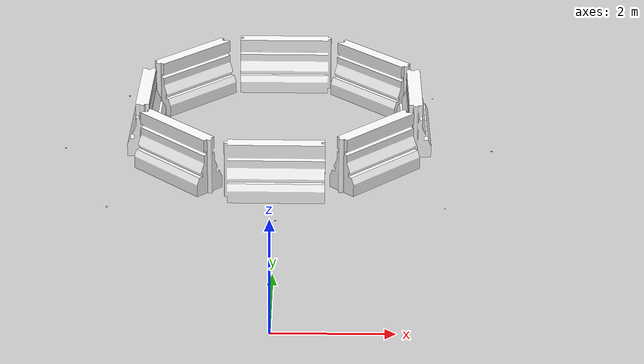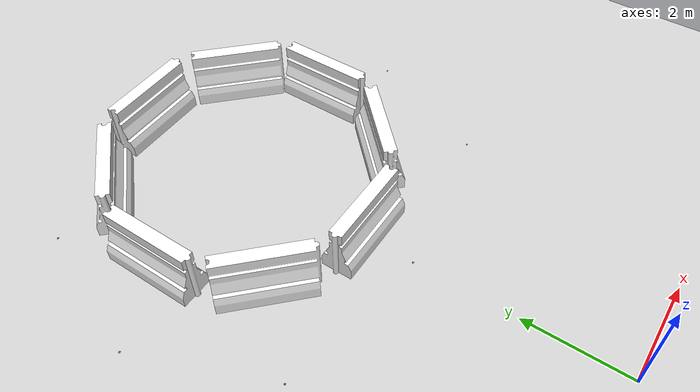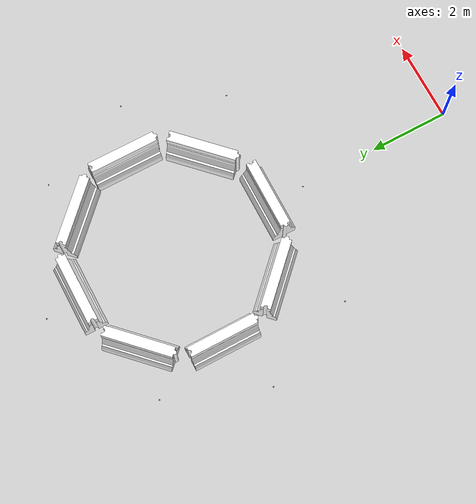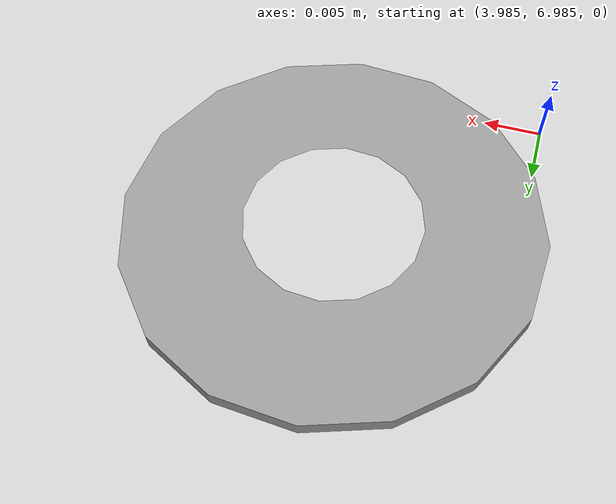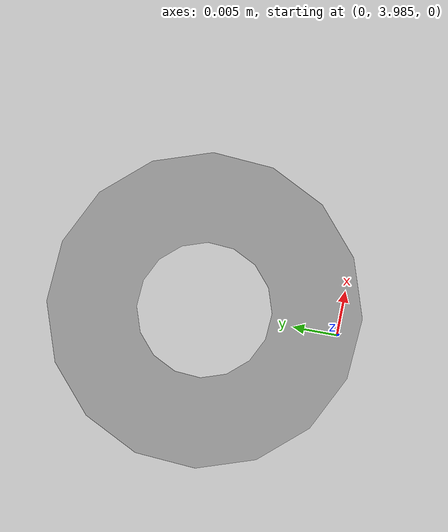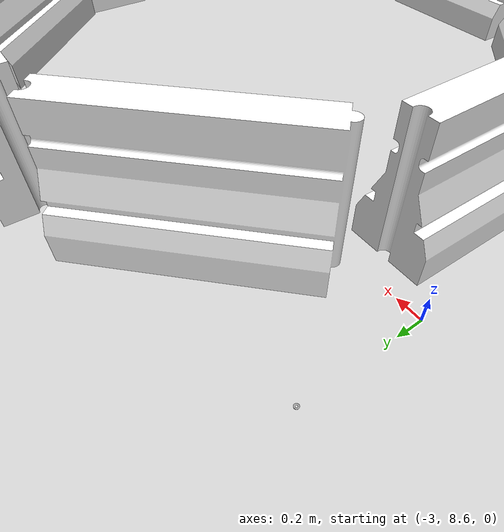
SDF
<sdf version="1.6">
 <world name="default">
  <light name="sun" type="directional">
   <pose>0 0 10 0 -0 0</pose>
   <diffuse>0.8 0.8 0.8 1</diffuse>
   <specular>0.2 0.2 0.2 1</specular>
   <attenuation>
    <range>1000</range>
    <constant>0.9</constant>
    <linear>0.01</linear>
    <quadratic>0.001</quadratic>
   </attenuation>
   <direction>-0.5 0.1 -0.9</direction>
  </light>
  <model name="ground_plane">
   <static>1</static>
   <link name="link">
    <collision name="collision">
     <geometry><plane><normal>0 0 1</normal><size>100 100</size></plane></geometry>
     <surface><friction><ode><mu>100</mu><mu2>50</mu2></ode></friction></surface>
    </collision>
    <visual name="visual">
     <cast_shadows>0</cast_shadows>
     <geometry><plane><normal>0 0 1</normal><size>100 100</size></plane></geometry>
     <material>
      <script><uri>file://media/materials/scripts/gazebo.material</uri><name>Gazebo/Grey</name></script>
     </material>
    </visual>
   </link>
  </model>
  <gravity>0 0 -9.8</gravity>
  <magnetic_field>6e-06 2.3e-05 -4.2e-05</magnetic_field>
  <atmosphere type="adiabatic"/>
  <physics name="default_physics" default="0" type="ode">
   <max_step_size>0.001</max_step_size>
   <real_time_factor>1</real_time_factor>
   <real_time_update_rate>1000</real_time_update_rate>
  </physics>
  <scene><ambient>0.4 0.4 0.4 1</ambient><background>0.7 0.7 0.7 1</background><shadows>1</shadows></scene>
  <spherical_coordinates>
   <surface_model>EARTH_WGS84</surface_model>
   <latitude_deg>0</latitude_deg>
   <longitude_deg>0</longitude_deg>
   <elevation>0</elevation>
   <heading_deg>0</heading_deg>
  </spherical_coordinates>
  <model name="drc_practice_white_jersey_barrier">
   <static>1</static>
   <link name="link">
    <visual name="visual">
     <geometry>
      <mesh>
       <uri>model://drc_practice_white_jersey_barrier/meshes/jersey_barrier.dae</uri>
       <scale>1 1 1</scale>
      </mesh>
     </geometry>
    </visual>
    <collision name="collision">
     <geometry>
      <mesh>
       <uri>model://drc_practice_white_jersey_barrier/meshes/jersey_barrier.dae</uri>
       <scale>1 1 1</scale>
      </mesh>
     </geometry>
    </collision>
   </link>
   <pose>1.78771 5.82373 0 0 0 -0.785398</pose>
  </model>
  <model name="drc_practice_white_jersey_barrier_clone">
   <static>1</static>
   <link name="link">
    <visual name="visual">
     <geometry>
      <mesh>
       <uri>model://drc_practice_white_jersey_barrier/meshes/jersey_barrier.dae</uri>
       <scale>1 1 1</scale>
      </mesh>
     </geometry>
    </visual>
    <collision name="collision">
     <geometry>
      <mesh>
       <uri>model://drc_practice_white_jersey_barrier/meshes/jersey_barrier.dae</uri>
       <scale>1 1 1</scale>
      </mesh>
     </geometry>
    </collision>
   </link>
   <pose>0 5 0 0 0 -1.5708</pose>
  </model>
  <model name="drc_practice_white_jersey_barrier_clone_0">
   <static>1</static>
   <link name="link">
    <visual name="visual">
     <geometry>
      <mesh>
       <uri>model://drc_practice_white_jersey_barrier/meshes/jersey_barrier.dae</uri>
       <scale>1 1 1</scale>
      </mesh>
     </geometry>
    </visual>
    <collision name="collision">
     <geometry>
      <mesh>
       <uri>model://drc_practice_white_jersey_barrier/meshes/jersey_barrier.dae</uri>
       <scale>1 1 1</scale>
      </mesh>
     </geometry>
    </collision>
   </link>
   <pose>0.060698 10.0444 0 0 -0 1.5708</pose>
  </model>
  <model name="drc_practice_white_jersey_barrier_clone_1">
   <static>1</static>
   <link name="link">
    <visual name="visual">
     <geometry>
      <mesh>
       <uri>model://drc_practice_white_jersey_barrier/meshes/jersey_barrier.dae</uri>
       <scale>1 1 1</scale>
      </mesh>
     </geometry>
    </visual>
    <collision name="collision">
     <geometry>
      <mesh>
       <uri>model://drc_practice_white_jersey_barrier/meshes/jersey_barrier.dae</uri>
       <scale>1 1 1</scale>
      </mesh>
     </geometry>
    </collision>
   </link>
   <pose>-1.72296 9.34128 0 0 0 -0.785398</pose>
  </model>
  <model name="drc_practice_white_jersey_barrier_clone_2">
   <static>1</static>
   <link name="link">
    <visual name="visual">
     <geometry>
      <mesh>
       <uri>model://drc_practice_white_jersey_barrier/meshes/jersey_barrier.dae</uri>
       <scale>1 1 1</scale>
      </mesh>
     </geometry>
    </visual>
    <collision name="collision">
     <geometry>
      <mesh>
       <uri>model://drc_practice_white_jersey_barrier/meshes/jersey_barrier.dae</uri>
       <scale>1 1 1</scale>
      </mesh>
     </geometry>
    </collision>
   </link>
   <pose>1.81226 9.27858 0 0 -0 0.785398</pose>
  </model>
  <model name="drc_practice_white_jersey_barrier_clone_3">
   <static>1</static>
   <link name="link">
    <visual name="visual">
     <geometry>
      <mesh>
       <uri>model://drc_practice_white_jersey_barrier/meshes/jersey_barrier.dae</uri>
       <scale>1 1 1</scale>
      </mesh>
     </geometry>
    </visual>
    <collision name="collision">
     <geometry>
      <mesh>
       <uri>model://drc_practice_white_jersey_barrier/meshes/jersey_barrier.dae</uri>
       <scale>1 1 1</scale>
      </mesh>
     </geometry>
    </collision>
   </link>
   <pose>-1.81323 5.76636 0 0 -0 0.785398</pose>
  </model>
  <model name="drc_practice_white_jersey_barrier_clone_2_clone">
   <static>1</static>
   <link name="link">
    <visual name="visual">
     <geometry>
      <mesh>
       <uri>model://drc_practice_white_jersey_barrier/meshes/jersey_barrier.dae</uri>
       <scale>1 1 1</scale>
      </mesh>
     </geometry>
    </visual>
    <collision name="collision">
     <geometry>
      <mesh>
       <uri>model://drc_practice_white_jersey_barrier/meshes/jersey_barrier.dae</uri>
       <scale>1 1 1</scale>
      </mesh>
     </geometry>
    </collision>
   </link>
   <pose>2.55055 7.59091 0 0 -0 0</pose>
  </model>
  <model name="drc_practice_white_jersey_barrier_clone_2_clone_0">
   <static>1</static>
   <link name="link">
    <visual name="visual">
     <geometry>
      <mesh>
       <uri>model://drc_practice_white_jersey_barrier/meshes/jersey_barrier.dae</uri>
       <scale>1 1 1</scale>
      </mesh>
     </geometry>
    </visual>
    <collision name="collision">
     <geometry>
      <mesh>
       <uri>model://drc_practice_white_jersey_barrier/meshes/jersey_barrier.dae</uri>
       <scale>1 1 1</scale>
      </mesh>
     </geometry>
    </collision>
   </link>
   <pose>-2.50821 7.55772 0 0 -0 0</pose>
  </model>
  <model name="washer_22">
   <link name="link">
    <pose>0 0 0.001 0 -0 0</pose>
    <inertial>
     <mass>0.0122</mass>
     <inertia>
      <ixx>1.08758e-06</ixx>
      <ixy>0</ixy>
      <ixz>0</ixz>
      <iyy>1.08758e-06</iyy>
      <iyz>0</iyz>
      <izz>2.16703e-06</izz>
     </inertia>
    </inertial>
    <collision name="collision">
     <geometry><mesh><uri>model://washer/meshes/washer.dae</uri><scale>1 1 1</scale></mesh></geometry>
     <surface>
      <contact>
       <poissons_ratio>0.305</poissons_ratio>
       <elastic_modulus>2e+11</elastic_modulus>
       <ode><kp>100000</kp><kd>100</kd><max_vel>100</max_vel><min_depth>0.001</min_depth></ode>
      </contact>
      <friction>
       <torsional>
        <coefficient>1</coefficient>
        <use_patch_radius>0</use_patch_radius>
        <surface_radius>0.01</surface_radius>
       </torsional>
      </friction>
     </surface>
    </collision>
    <visual name="visual">
     <geometry><mesh><uri>model://washer/meshes/washer.dae</uri><scale>1 1 1</scale></mesh></geometry>
     <material>
      <script><uri>file://media/materials/scripts/gazebo.material</uri><name>Gazebo/Grey</name></script>
     </material>
    </visual>
   </link>
   <pose>0 2 -0.000561 -0.016306 -0.005486 6.3e-05</pose>
  </model>
  <model name="washer_23">
   <link name="link">
    <pose>0 0 0.001 0 -0 0</pose>
    <inertial>
     <mass>0.0122</mass>
     <inertia>
      <ixx>1.08758e-06</ixx>
      <ixy>0</ixy>
      <ixz>0</ixz>
      <iyy>1.08758e-06</iyy>
      <iyz>0</iyz>
      <izz>2.16703e-06</izz>
     </inertia>
    </inertial>
    <collision name="collision">
     <geometry><mesh><uri>model://washer/meshes/washer.dae</uri><scale>1 1 1</scale></mesh></geometry>
     <surface>
      <contact>
       <poissons_ratio>0.305</poissons_ratio>
       <elastic_modulus>2e+11</elastic_modulus>
       <ode><kp>100000</kp><kd>100</kd><max_vel>100</max_vel><min_depth>0.001</min_depth></ode>
      </contact>
      <friction>
       <torsional>
        <coefficient>1</coefficient>
        <use_patch_radius>0</use_patch_radius>
        <surface_radius>0.01</surface_radius>
       </torsional>
      </friction>
     </surface>
    </collision>
    <visual name="visual">
     <geometry><mesh><uri>model://washer/meshes/washer.dae</uri><scale>1 1 1</scale></mesh></geometry>
     <material>
      <script><uri>file://media/materials/scripts/gazebo.material</uri><name>Gazebo/Grey</name></script>
     </material>
    </visual>
   </link>
   <pose>0 4 -0.000499 -0.014491 -0.004873 5e-05</pose>
  </model>
  <model name="washer_24">
   <link name="link">
    <pose>0 0 0.001 0 -0 0</pose>
    <inertial>
     <mass>0.0122</mass>
     <inertia>
      <ixx>1.08758e-06</ixx>
      <ixy>0</ixy>
      <ixz>0</ixz>
      <iyy>1.08758e-06</iyy>
      <iyz>0</iyz>
      <izz>2.16703e-06</izz>
     </inertia>
    </inertial>
    <collision name="collision">
     <geometry><mesh><uri>model://washer/meshes/washer.dae</uri><scale>1 1 1</scale></mesh></geometry>
     <surface>
      <contact>
       <poissons_ratio>0.305</poissons_ratio>
       <elastic_modulus>2e+11</elastic_modulus>
       <ode><kp>100000</kp><kd>100</kd><max_vel>100</max_vel><min_depth>0.001</min_depth></ode>
      </contact>
      <friction>
       <torsional>
        <coefficient>1</coefficient>
        <use_patch_radius>0</use_patch_radius>
        <surface_radius>0.01</surface_radius>
       </torsional>
      </friction>
     </surface>
    </collision>
    <visual name="visual">
     <geometry><mesh><uri>model://washer/meshes/washer.dae</uri><scale>1 1 1</scale></mesh></geometry>
     <material>
      <script><uri>file://media/materials/scripts/gazebo.material</uri><name>Gazebo/Grey</name></script>
     </material>
    </visual>
   </link>
   <pose>3 4.53424 -0.000436 -0.012677 -0.004264 3.8e-05</pose>
  </model>
  <model name="washer_25">
   <link name="link">
    <pose>0 0 0.001 0 -0 0</pose>
    <inertial>
     <mass>0.0122</mass>
     <inertia>
      <ixx>1.08758e-06</ixx>
      <ixy>0</ixy>
      <ixz>0</ixz>
      <iyy>1.08758e-06</iyy>
      <iyz>0</iyz>
      <izz>2.16703e-06</izz>
     </inertia>
    </inertial>
    <collision name="collision">
     <geometry><mesh><uri>model://washer/meshes/washer.dae</uri><scale>1 1 1</scale></mesh></geometry>
     <surface>
      <contact>
       <poissons_ratio>0.305</poissons_ratio>
       <elastic_modulus>2e+11</elastic_modulus>
       <ode><kp>100000</kp><kd>100</kd><max_vel>100</max_vel><min_depth>0.001</min_depth></ode>
      </contact>
      <friction>
       <torsional>
        <coefficient>1</coefficient>
        <use_patch_radius>0</use_patch_radius>
        <surface_radius>0.01</surface_radius>
       </torsional>
      </friction>
     </surface>
    </collision>
    <visual name="visual">
     <geometry><mesh><uri>model://washer/meshes/washer.dae</uri><scale>1 1 1</scale></mesh></geometry>
     <material>
      <script><uri>file://media/materials/scripts/gazebo.material</uri><name>Gazebo/Grey</name></script>
     </material>
    </visual>
   </link>
   <pose>4 7 -0.000374 -0.010864 -0.003654 2.8e-05</pose>
  </model>
  <model name="washer_26">
   <link name="link">
    <pose>0 0 0.001 0 -0 0</pose>
    <inertial>
     <mass>0.0122</mass>
     <inertia>
      <ixx>1.08758e-06</ixx>
      <ixy>0</ixy>
      <ixz>0</ixz>
      <iyy>1.08758e-06</iyy>
      <iyz>0</iyz>
      <izz>2.16703e-06</izz>
     </inertia>
    </inertial>
    <collision name="collision">
     <geometry><mesh><uri>model://washer/meshes/washer.dae</uri><scale>1 1 1</scale></mesh></geometry>
     <surface>
      <contact>
       <poissons_ratio>0.305</poissons_ratio>
       <elastic_modulus>2e+11</elastic_modulus>
       <ode><kp>100000</kp><kd>100</kd><max_vel>100</max_vel><min_depth>0.001</min_depth></ode>
      </contact>
      <friction>
       <torsional>
        <coefficient>1</coefficient>
        <use_patch_radius>0</use_patch_radius>
        <surface_radius>0.01</surface_radius>
       </torsional>
      </friction>
     </surface>
    </collision>
    <visual name="visual">
     <geometry><mesh><uri>model://washer/meshes/washer.dae</uri><scale>1 1 1</scale></mesh></geometry>
     <material>
      <script><uri>file://media/materials/scripts/gazebo.material</uri><name>Gazebo/Grey</name></script>
     </material>
    </visual>
   </link>
   <pose>3 9.49398 -0.000312 -0.009051 -0.003045 1.9e-05</pose>
  </model>
  <model name="washer_27">
   <link name="link">
    <pose>0 0 0.001 0 -0 0</pose>
    <inertial>
     <mass>0.0122</mass>
     <inertia>
      <ixx>1.08758e-06</ixx>
      <ixy>0</ixy>
      <ixz>0</ixz>
      <iyy>1.08758e-06</iyy>
      <iyz>0</iyz>
      <izz>2.16703e-06</izz>
     </inertia>
    </inertial>
    <collision name="collision">
     <geometry><mesh><uri>model://washer/meshes/washer.dae</uri><scale>1 1 1</scale></mesh></geometry>
     <surface>
      <contact>
       <poissons_ratio>0.305</poissons_ratio>
       <elastic_modulus>2e+11</elastic_modulus>
       <ode><kp>100000</kp><kd>100</kd><max_vel>100</max_vel><min_depth>0.001</min_depth></ode>
      </contact>
      <friction>
       <torsional>
        <coefficient>1</coefficient>
        <use_patch_radius>0</use_patch_radius>
        <surface_radius>0.01</surface_radius>
       </torsional>
      </friction>
     </surface>
    </collision>
    <visual name="visual">
     <geometry><mesh><uri>model://washer/meshes/washer.dae</uri><scale>1 1 1</scale></mesh></geometry>
     <material>
      <script><uri>file://media/materials/scripts/gazebo.material</uri><name>Gazebo/Grey</name></script>
     </material>
    </visual>
   </link>
   <pose>0 11 -0.000249 -0.00724 -0.002437 1.2e-05</pose>
  </model>
  <model name="washer_28">
   <link name="link">
    <pose>0 0 0.001 0 -0 0</pose>
    <inertial>
     <mass>0.0122</mass>
     <inertia>
      <ixx>1.08758e-06</ixx>
      <ixy>0</ixy>
      <ixz>0</ixz>
      <iyy>1.08758e-06</iyy>
      <iyz>0</iyz>
      <izz>2.16703e-06</izz>
     </inertia>
    </inertial>
    <collision name="collision">
     <geometry><mesh><uri>model://washer/meshes/washer.dae</uri><scale>1 1 1</scale></mesh></geometry>
     <surface>
      <contact>
       <poissons_ratio>0.305</poissons_ratio>
       <elastic_modulus>2e+11</elastic_modulus>
       <ode><kp>100000</kp><kd>100</kd><max_vel>100</max_vel><min_depth>0.001</min_depth></ode>
      </contact>
      <friction>
       <torsional>
        <coefficient>1</coefficient>
        <use_patch_radius>0</use_patch_radius>
        <surface_radius>0.01</surface_radius>
       </torsional>
      </friction>
     </surface>
    </collision>
    <visual name="visual">
     <geometry><mesh><uri>model://washer/meshes/washer.dae</uri><scale>1 1 1</scale></mesh></geometry>
     <material>
      <script><uri>file://media/materials/scripts/gazebo.material</uri><name>Gazebo/Grey</name></script>
     </material>
    </visual>
   </link>
   <pose>-3 9.51547 -0.000187 -0.005431 -0.001828 7e-06</pose>
  </model>
  <model name="washer_29">
   <link name="link">
    <pose>0 0 0.001 0 -0 0</pose>
    <inertial>
     <mass>0.0122</mass>
     <inertia>
      <ixx>1.08758e-06</ixx>
      <ixy>0</ixy>
      <ixz>0</ixz>
      <iyy>1.08758e-06</iyy>
      <iyz>0</iyz>
      <izz>2.16703e-06</izz>
     </inertia>
    </inertial>
    <collision name="collision">
     <geometry><mesh><uri>model://washer/meshes/washer.dae</uri><scale>1 1 1</scale></mesh></geometry>
     <surface>
      <contact>
       <poissons_ratio>0.305</poissons_ratio>
       <elastic_modulus>2e+11</elastic_modulus>
       <ode><kp>100000</kp><kd>100</kd><max_vel>100</max_vel><min_depth>0.001</min_depth></ode>
      </contact>
      <friction>
       <torsional>
        <coefficient>1</coefficient>
        <use_patch_radius>0</use_patch_radius>
        <surface_radius>0.01</surface_radius>
       </torsional>
      </friction>
     </surface>
    </collision>
    <visual name="visual">
     <geometry><mesh><uri>model://washer/meshes/washer.dae</uri><scale>1 1 1</scale></mesh></geometry>
     <material>
      <script><uri>file://media/materials/scripts/gazebo.material</uri><name>Gazebo/Grey</name></script>
     </material>
    </visual>
   </link>
   <pose>-4 7 -0.000125 -0.003623 -0.00122 3e-06</pose>
  </model>
  <model name="washer_30">
   <link name="link">
    <pose>0 0 0.001 0 -0 0</pose>
    <inertial>
     <mass>0.0122</mass>
     <inertia>
      <ixx>1.08758e-06</ixx>
      <ixy>0</ixy>
      <ixz>0</ixz>
      <iyy>1.08758e-06</iyy>
      <iyz>0</iyz>
      <izz>2.16703e-06</izz>
     </inertia>
    </inertial>
    <collision name="collision">
     <geometry><mesh><uri>model://washer/meshes/washer.dae</uri><scale>1 1 1</scale></mesh></geometry>
     <surface>
      <contact>
       <poissons_ratio>0.305</poissons_ratio>
       <elastic_modulus>2e+11</elastic_modulus>
       <ode><kp>100000</kp><kd>100</kd><max_vel>100</max_vel><min_depth>0.001</min_depth></ode>
      </contact>
      <friction>
       <torsional>
        <coefficient>1</coefficient>
        <use_patch_radius>0</use_patch_radius>
        <surface_radius>0.01</surface_radius>
       </torsional>
      </friction>
     </surface>
    </collision>
    <visual name="visual">
     <geometry><mesh><uri>model://washer/meshes/washer.dae</uri><scale>1 1 1</scale></mesh></geometry>
     <material>
      <script><uri>file://media/materials/scripts/gazebo.material</uri><name>Gazebo/Grey</name></script>
     </material>
    </visual>
   </link>
   <pose>-3 4.50122 -6.2e-05 -0.001818 -0.000613 1e-06</pose>
  </model>
 </world>
</sdf>
